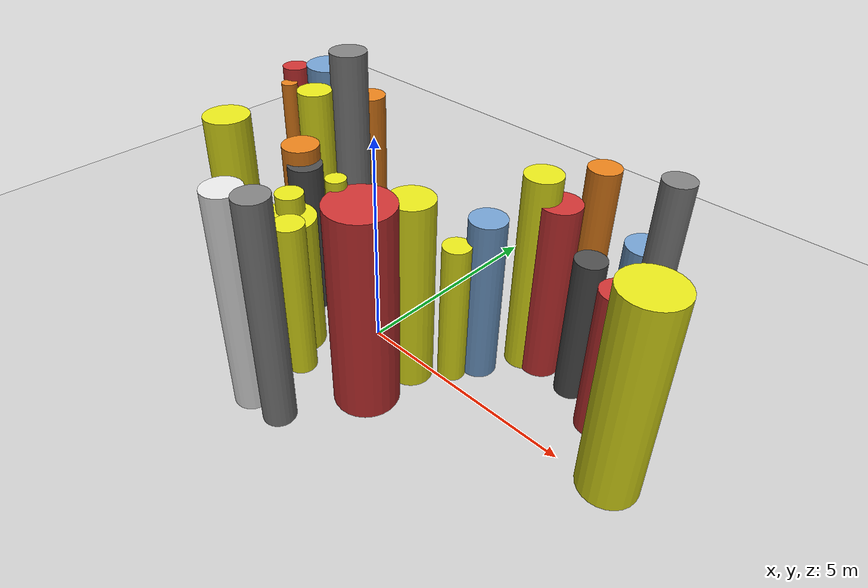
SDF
<?xml version='1.0'?>
<sdf version='1.6'>
  <world name='routeA_rl_v1__dense_recovery__rl_train__s_turn_multi_obstacle__000088'>
    <!-- Sun light -->
    <light name='sun' type='directional'>
      <cast_shadows>1</cast_shadows>
      <pose>0 0 10 0 0 0</pose>
      <diffuse>0.8 0.8 0.8 1</diffuse>
      <specular>0.2 0.2 0.2 1</specular>
      <attenuation>
        <range>1000</range>
        <constant>0.9</constant>
        <linear>0.01</linear>
        <quadratic>0.001</quadratic>
      </attenuation>
      <direction>-0.5 0.1 -0.9</direction>
    </light>

    <!-- Ground plane -->
    <model name='ground_plane'>
      <static>1</static>
      <link name='link'>
        <collision name='collision'>
          <geometry>
            <plane>
              <normal>0 0 1</normal>
              <size>100 100</size>
            </plane>
          </geometry>
          <surface>
            <contact>
              <collide_bitmask>65535</collide_bitmask>
              <ode/>
            </contact>
            <friction>
              <ode>
                <mu>100</mu>
                <mu2>50</mu2>
              </ode>
              <torsional><ode/></torsional>
            </friction>
            <bounce/>
          </surface>
          <max_contacts>10</max_contacts>
        </collision>
        <visual name='visual'>
          <cast_shadows>0</cast_shadows>
          <geometry>
            <plane>
              <normal>0 0 1</normal>
              <size>100 100</size>
            </plane>
          </geometry>
          <material>
            <script>
              <uri>file://media/materials/scripts/gazebo.material</uri>
              <n>Gazebo/Grey</n>
            </script>
          </material>
        </visual>
      </link>
    </model>

    <!-- Environment -->
    <magnetic_field>6e-06 2.3e-05 -4.2e-05</magnetic_field>
    <atmosphere type='adiabatic'/>
    <physics name='default_physics' default='0' type='ode'>
      <gravity>0 0 -9.8</gravity>
      <max_step_size>0.004</max_step_size>
      <real_time_factor>1</real_time_factor>
      <real_time_update_rate>250</real_time_update_rate>
    </physics>
    <scene>
      <ambient>0.4 0.4 0.4 1</ambient>
      <background>0.7 0.7 0.7 1</background>
      <shadows>1</shadows>
    </scene>
    <wind/>
    <spherical_coordinates>
      <surface_model>EARTH_WGS84</surface_model>
      <latitude_deg>0</latitude_deg>
      <longitude_deg>0</longitude_deg>
      <elevation>0</elevation>
      <heading_deg>0</heading_deg>
    </spherical_coordinates>

    <!-- ============ OBSTACLES (28) ============ -->
    <model name='s_turn_obs_0'>
      <static>1</static>
      <link name='link'>
        <visual name='visual'>
          <geometry>
            <cylinder>
              <radius>0.6164</radius>
              <length>3.4247</length>
            </cylinder>
          </geometry>
          <material>
            <script>
              <n>Gazebo/Yellow</n>
              <uri>file://media/materials/scripts/gazebo.material</uri>
            </script>
            <ambient>0.9 0.9 0.1 1</ambient>
          </material>
        </visual>
        <collision name='collision'>
          <geometry>
            <cylinder>
              <radius>0.6164</radius>
              <length>3.4247</length>
            </cylinder>
          </geometry>
          <max_contacts>10</max_contacts>
          <surface>
            <contact><ode/></contact>
            <bounce/>
            <friction>
              <ode><mu>1</mu><mu2>1</mu2></ode>
              <torsional><ode/></torsional>
            </friction>
          </surface>
        </collision>
      </link>
      <pose>-6.0000 0.3100 1.7124 0 0 0.0000</pose>
    </model>

    <model name='s_turn_obs_1'>
      <static>1</static>
      <link name='link'>
        <visual name='visual'>
          <geometry>
            <cylinder>
              <radius>0.3288</radius>
              <length>4.4928</length>
            </cylinder>
          </geometry>
          <material>
            <script>
              <n>Gazebo/Red</n>
              <uri>file://media/materials/scripts/gazebo.material</uri>
            </script>
            <ambient>0.8 0.2 0.2 1</ambient>
          </material>
        </visual>
        <collision name='collision'>
          <geometry>
            <cylinder>
              <radius>0.3288</radius>
              <length>4.4928</length>
            </cylinder>
          </geometry>
          <max_contacts>10</max_contacts>
          <surface>
            <contact><ode/></contact>
            <bounce/>
            <friction>
              <ode><mu>1</mu><mu2>1</mu2></ode>
              <torsional><ode/></torsional>
            </friction>
          </surface>
        </collision>
      </link>
      <pose>-5.2000 2.0354 2.2464 0 0 0.0000</pose>
    </model>

    <model name='s_turn_obs_2'>
      <static>1</static>
      <link name='link'>
        <visual name='visual'>
          <geometry>
            <cylinder>
              <radius>0.5951</radius>
              <length>4.6259</length>
            </cylinder>
          </geometry>
          <material>
            <script>
              <n>Gazebo/Blue</n>
              <uri>file://media/materials/scripts/gazebo.material</uri>
            </script>
            <ambient>0.447 0.624 0.812 1</ambient>
          </material>
        </visual>
        <collision name='collision'>
          <geometry>
            <cylinder>
              <radius>0.5951</radius>
              <length>4.6259</length>
            </cylinder>
          </geometry>
          <max_contacts>10</max_contacts>
          <surface>
            <contact><ode/></contact>
            <bounce/>
            <friction>
              <ode><mu>1</mu><mu2>1</mu2></ode>
              <torsional><ode/></torsional>
            </friction>
          </surface>
        </collision>
      </link>
      <pose>-4.4000 2.5199 2.3130 0 0 0.0000</pose>
    </model>

    <model name='s_turn_obs_3'>
      <static>1</static>
      <link name='link'>
        <visual name='visual'>
          <geometry>
            <cylinder>
              <radius>0.4131</radius>
              <length>3.8688</length>
            </cylinder>
          </geometry>
          <material>
            <script>
              <n>Gazebo/Orange</n>
              <uri>file://media/materials/scripts/gazebo.material</uri>
            </script>
            <ambient>0.9 0.5 0.1 1</ambient>
          </material>
        </visual>
        <collision name='collision'>
          <geometry>
            <cylinder>
              <radius>0.4131</radius>
              <length>3.8688</length>
            </cylinder>
          </geometry>
          <max_contacts>10</max_contacts>
          <surface>
            <contact><ode/></contact>
            <bounce/>
            <friction>
              <ode><mu>1</mu><mu2>1</mu2></ode>
              <torsional><ode/></torsional>
            </friction>
          </surface>
        </collision>
      </link>
      <pose>-3.6000 3.1013 1.9344 0 0 0.0000</pose>
    </model>

    <model name='s_turn_obs_4'>
      <static>1</static>
      <link name='link'>
        <visual name='visual'>
          <geometry>
            <cylinder>
              <radius>0.4392</radius>
              <length>5.5619</length>
            </cylinder>
          </geometry>
          <material>
            <script>
              <n>Gazebo/Grey</n>
              <uri>file://media/materials/scripts/gazebo.material</uri>
            </script>
            <ambient>0.5 0.5 0.5 1</ambient>
          </material>
        </visual>
        <collision name='collision'>
          <geometry>
            <cylinder>
              <radius>0.4392</radius>
              <length>5.5619</length>
            </cylinder>
          </geometry>
          <max_contacts>10</max_contacts>
          <surface>
            <contact><ode/></contact>
            <bounce/>
            <friction>
              <ode><mu>1</mu><mu2>1</mu2></ode>
              <torsional><ode/></torsional>
            </friction>
          </surface>
        </collision>
      </link>
      <pose>-2.8000 1.7825 2.7810 0 0 0.0000</pose>
    </model>

    <model name='s_turn_obs_5'>
      <static>1</static>
      <link name='link'>
        <visual name='visual'>
          <geometry>
            <cylinder>
              <radius>0.3938</radius>
              <length>3.7597</length>
            </cylinder>
          </geometry>
          <material>
            <script>
              <n>Gazebo/DarkGrey</n>
              <uri>file://media/materials/scripts/gazebo.material</uri>
            </script>
            <ambient>0.3 0.3 0.3 1</ambient>
          </material>
        </visual>
        <collision name='collision'>
          <geometry>
            <cylinder>
              <radius>0.3938</radius>
              <length>3.7597</length>
            </cylinder>
          </geometry>
          <max_contacts>10</max_contacts>
          <surface>
            <contact><ode/></contact>
            <bounce/>
            <friction>
              <ode><mu>1</mu><mu2>1</mu2></ode>
              <torsional><ode/></torsional>
            </friction>
          </surface>
        </collision>
      </link>
      <pose>-2.0000 -0.2478 1.8799 0 0 0.0000</pose>
    </model>

    <model name='s_turn_obs_6'>
      <static>1</static>
      <link name='link'>
        <visual name='visual'>
          <geometry>
            <cylinder>
              <radius>0.6126</radius>
              <length>3.2603</length>
            </cylinder>
          </geometry>
          <material>
            <script>
              <n>Gazebo/Yellow</n>
              <uri>file://media/materials/scripts/gazebo.material</uri>
            </script>
            <ambient>0.9 0.9 0.1 1</ambient>
          </material>
        </visual>
        <collision name='collision'>
          <geometry>
            <cylinder>
              <radius>0.6126</radius>
              <length>3.2603</length>
            </cylinder>
          </geometry>
          <max_contacts>10</max_contacts>
          <surface>
            <contact><ode/></contact>
            <bounce/>
            <friction>
              <ode><mu>1</mu><mu2>1</mu2></ode>
              <torsional><ode/></torsional>
            </friction>
          </surface>
        </collision>
      </link>
      <pose>-1.2000 -1.3668 1.6301 0 0 0.0000</pose>
    </model>

    <model name='s_turn_obs_7'>
      <static>1</static>
      <link name='link'>
        <visual name='visual'>
          <geometry>
            <cylinder>
              <radius>0.3978</radius>
              <length>5.0302</length>
            </cylinder>
          </geometry>
          <material>
            <script>
              <n>Gazebo/White</n>
              <uri>file://media/materials/scripts/gazebo.material</uri>
            </script>
            <ambient>0.9 0.9 0.9 1</ambient>
          </material>
        </visual>
        <collision name='collision'>
          <geometry>
            <cylinder>
              <radius>0.3978</radius>
              <length>5.0302</length>
            </cylinder>
          </geometry>
          <max_contacts>10</max_contacts>
          <surface>
            <contact><ode/></contact>
            <bounce/>
            <friction>
              <ode><mu>1</mu><mu2>1</mu2></ode>
              <torsional><ode/></torsional>
            </friction>
          </surface>
        </collision>
      </link>
      <pose>-0.4000 -3.1900 2.5151 0 0 0.0000</pose>
    </model>

    <model name='s_turn_obs_8'>
      <static>1</static>
      <link name='link'>
        <visual name='visual'>
          <geometry>
            <cylinder>
              <radius>0.3493</radius>
              <length>5.1892</length>
            </cylinder>
          </geometry>
          <material>
            <script>
              <n>Gazebo/Grey</n>
              <uri>file://media/materials/scripts/gazebo.material</uri>
            </script>
            <ambient>0.5 0.5 0.5 1</ambient>
          </material>
        </visual>
        <collision name='collision'>
          <geometry>
            <cylinder>
              <radius>0.3493</radius>
              <length>5.1892</length>
            </cylinder>
          </geometry>
          <max_contacts>10</max_contacts>
          <surface>
            <contact><ode/></contact>
            <bounce/>
            <friction>
              <ode><mu>1</mu><mu2>1</mu2></ode>
              <torsional><ode/></torsional>
            </friction>
          </surface>
        </collision>
      </link>
      <pose>0.4000 -3.1139 2.5946 0 0 0.0000</pose>
    </model>

    <model name='s_turn_obs_9'>
      <static>1</static>
      <link name='link'>
        <visual name='visual'>
          <geometry>
            <cylinder>
              <radius>0.6983</radius>
              <length>4.6590</length>
            </cylinder>
          </geometry>
          <material>
            <script>
              <n>Gazebo/Red</n>
              <uri>file://media/materials/scripts/gazebo.material</uri>
            </script>
            <ambient>0.8 0.2 0.2 1</ambient>
          </material>
        </visual>
        <collision name='collision'>
          <geometry>
            <cylinder>
              <radius>0.6983</radius>
              <length>4.6590</length>
            </cylinder>
          </geometry>
          <max_contacts>10</max_contacts>
          <surface>
            <contact><ode/></contact>
            <bounce/>
            <friction>
              <ode><mu>1</mu><mu2>1</mu2></ode>
              <torsional><ode/></torsional>
            </friction>
          </surface>
        </collision>
      </link>
      <pose>1.2000 -1.4524 2.3295 0 0 0.0000</pose>
    </model>

    <model name='s_turn_obs_10'>
      <static>1</static>
      <link name='link'>
        <visual name='visual'>
          <geometry>
            <cylinder>
              <radius>0.3016</radius>
              <length>3.3149</length>
            </cylinder>
          </geometry>
          <material>
            <script>
              <n>Gazebo/Yellow</n>
              <uri>file://media/materials/scripts/gazebo.material</uri>
            </script>
            <ambient>0.9 0.9 0.1 1</ambient>
          </material>
        </visual>
        <collision name='collision'>
          <geometry>
            <cylinder>
              <radius>0.3016</radius>
              <length>3.3149</length>
            </cylinder>
          </geometry>
          <max_contacts>10</max_contacts>
          <surface>
            <contact><ode/></contact>
            <bounce/>
            <friction>
              <ode><mu>1</mu><mu2>1</mu2></ode>
              <torsional><ode/></torsional>
            </friction>
          </surface>
        </collision>
      </link>
      <pose>2.0000 0.2905 1.6574 0 0 0.0000</pose>
    </model>

    <model name='s_turn_obs_11'>
      <static>1</static>
      <link name='link'>
        <visual name='visual'>
          <geometry>
            <cylinder>
              <radius>0.3951</radius>
              <length>4.6357</length>
            </cylinder>
          </geometry>
          <material>
            <script>
              <n>Gazebo/Yellow</n>
              <uri>file://media/materials/scripts/gazebo.material</uri>
            </script>
            <ambient>0.9 0.9 0.1 1</ambient>
          </material>
        </visual>
        <collision name='collision'>
          <geometry>
            <cylinder>
              <radius>0.3951</radius>
              <length>4.6357</length>
            </cylinder>
          </geometry>
          <max_contacts>10</max_contacts>
          <surface>
            <contact><ode/></contact>
            <bounce/>
            <friction>
              <ode><mu>1</mu><mu2>1</mu2></ode>
              <torsional><ode/></torsional>
            </friction>
          </surface>
        </collision>
      </link>
      <pose>2.8000 1.7588 2.3179 0 0 0.0000</pose>
    </model>

    <model name='s_turn_obs_12'>
      <static>1</static>
      <link name='link'>
        <visual name='visual'>
          <geometry>
            <cylinder>
              <radius>0.3318</radius>
              <length>4.7910</length>
            </cylinder>
          </geometry>
          <material>
            <script>
              <n>Gazebo/Orange</n>
              <uri>file://media/materials/scripts/gazebo.material</uri>
            </script>
            <ambient>0.9 0.5 0.1 1</ambient>
          </material>
        </visual>
        <collision name='collision'>
          <geometry>
            <cylinder>
              <radius>0.3318</radius>
              <length>4.7910</length>
            </cylinder>
          </geometry>
          <max_contacts>10</max_contacts>
          <surface>
            <contact><ode/></contact>
            <bounce/>
            <friction>
              <ode><mu>1</mu><mu2>1</mu2></ode>
              <torsional><ode/></torsional>
            </friction>
          </surface>
        </collision>
      </link>
      <pose>3.6000 2.5374 2.3955 0 0 0.0000</pose>
    </model>

    <model name='s_turn_obs_13'>
      <static>1</static>
      <link name='link'>
        <visual name='visual'>
          <geometry>
            <cylinder>
              <radius>0.4346</radius>
              <length>3.0837</length>
            </cylinder>
          </geometry>
          <material>
            <script>
              <n>Gazebo/Blue</n>
              <uri>file://media/materials/scripts/gazebo.material</uri>
            </script>
            <ambient>0.447 0.624 0.812 1</ambient>
          </material>
        </visual>
        <collision name='collision'>
          <geometry>
            <cylinder>
              <radius>0.4346</radius>
              <length>3.0837</length>
            </cylinder>
          </geometry>
          <max_contacts>10</max_contacts>
          <surface>
            <contact><ode/></contact>
            <bounce/>
            <friction>
              <ode><mu>1</mu><mu2>1</mu2></ode>
              <torsional><ode/></torsional>
            </friction>
          </surface>
        </collision>
      </link>
      <pose>4.4000 3.2410 1.5418 0 0 0.0000</pose>
    </model>

    <model name='s_turn_obs_14'>
      <static>1</static>
      <link name='link'>
        <visual name='visual'>
          <geometry>
            <cylinder>
              <radius>0.3061</radius>
              <length>5.3277</length>
            </cylinder>
          </geometry>
          <material>
            <script>
              <n>Gazebo/Grey</n>
              <uri>file://media/materials/scripts/gazebo.material</uri>
            </script>
            <ambient>0.5 0.5 0.5 1</ambient>
          </material>
        </visual>
        <collision name='collision'>
          <geometry>
            <cylinder>
              <radius>0.3061</radius>
              <length>5.3277</length>
            </cylinder>
          </geometry>
          <max_contacts>10</max_contacts>
          <surface>
            <contact><ode/></contact>
            <bounce/>
            <friction>
              <ode><mu>1</mu><mu2>1</mu2></ode>
              <torsional><ode/></torsional>
            </friction>
          </surface>
        </collision>
      </link>
      <pose>5.2000 2.1436 2.6639 0 0 0.0000</pose>
    </model>

    <model name='s_turn_obs_15'>
      <static>1</static>
      <link name='link'>
        <visual name='visual'>
          <geometry>
            <cylinder>
              <radius>0.6048</radius>
              <length>4.5943</length>
            </cylinder>
          </geometry>
          <material>
            <script>
              <n>Gazebo/Yellow</n>
              <uri>file://media/materials/scripts/gazebo.material</uri>
            </script>
            <ambient>0.9 0.9 0.1 1</ambient>
          </material>
        </visual>
        <collision name='collision'>
          <geometry>
            <cylinder>
              <radius>0.6048</radius>
              <length>4.5943</length>
            </cylinder>
          </geometry>
          <max_contacts>10</max_contacts>
          <surface>
            <contact><ode/></contact>
            <bounce/>
            <friction>
              <ode><mu>1</mu><mu2>1</mu2></ode>
              <torsional><ode/></torsional>
            </friction>
          </surface>
        </collision>
      </link>
      <pose>6.0000 0.1955 2.2971 0 0 0.0000</pose>
    </model>

    <model name='s_turn_obs2_0'>
      <static>1</static>
      <link name='link'>
        <visual name='visual'>
          <geometry>
            <cylinder>
              <radius>0.2030</radius>
              <length>4.2016</length>
            </cylinder>
          </geometry>
          <material>
            <script>
              <n>Gazebo/Orange</n>
              <uri>file://media/materials/scripts/gazebo.material</uri>
            </script>
            <ambient>0.9 0.5 0.1 1</ambient>
          </material>
        </visual>
        <collision name='collision'>
          <geometry>
            <cylinder>
              <radius>0.2030</radius>
              <length>4.2016</length>
            </cylinder>
          </geometry>
          <max_contacts>10</max_contacts>
          <surface>
            <contact><ode/></contact>
            <bounce/>
            <friction>
              <ode><mu>1</mu><mu2>1</mu2></ode>
              <torsional><ode/></torsional>
            </friction>
          </surface>
        </collision>
      </link>
      <pose>-5.0000 1.6531 2.1008 0 0 0.0000</pose>
    </model>

    <model name='s_turn_obs2_1'>
      <static>1</static>
      <link name='link'>
        <visual name='visual'>
          <geometry>
            <cylinder>
              <radius>0.2793</radius>
              <length>3.6263</length>
            </cylinder>
          </geometry>
          <material>
            <script>
              <n>Gazebo/White</n>
              <uri>file://media/materials/scripts/gazebo.material</uri>
            </script>
            <ambient>0.9 0.9 0.9 1</ambient>
          </material>
        </visual>
        <collision name='collision'>
          <geometry>
            <cylinder>
              <radius>0.2793</radius>
              <length>3.6263</length>
            </cylinder>
          </geometry>
          <max_contacts>10</max_contacts>
          <surface>
            <contact><ode/></contact>
            <bounce/>
            <friction>
              <ode><mu>1</mu><mu2>1</mu2></ode>
              <torsional><ode/></torsional>
            </friction>
          </surface>
        </collision>
      </link>
      <pose>-4.0909 2.1782 1.8132 0 0 0.0000</pose>
    </model>

    <model name='s_turn_obs2_2'>
      <static>1</static>
      <link name='link'>
        <visual name='visual'>
          <geometry>
            <cylinder>
              <radius>0.4094</radius>
              <length>4.7263</length>
            </cylinder>
          </geometry>
          <material>
            <script>
              <n>Gazebo/Yellow</n>
              <uri>file://media/materials/scripts/gazebo.material</uri>
            </script>
            <ambient>0.9 0.9 0.1 1</ambient>
          </material>
        </visual>
        <collision name='collision'>
          <geometry>
            <cylinder>
              <radius>0.4094</radius>
              <length>4.7263</length>
            </cylinder>
          </geometry>
          <max_contacts>10</max_contacts>
          <surface>
            <contact><ode/></contact>
            <bounce/>
            <friction>
              <ode><mu>1</mu><mu2>1</mu2></ode>
              <torsional><ode/></torsional>
            </friction>
          </surface>
        </collision>
      </link>
      <pose>-3.1818 1.0520 2.3632 0 0 0.0000</pose>
    </model>

    <model name='s_turn_obs2_3'>
      <static>1</static>
      <link name='link'>
        <visual name='visual'>
          <geometry>
            <cylinder>
              <radius>0.4235</radius>
              <length>4.0880</length>
            </cylinder>
          </geometry>
          <material>
            <script>
              <n>Gazebo/Orange</n>
              <uri>file://media/materials/scripts/gazebo.material</uri>
            </script>
            <ambient>0.9 0.5 0.1 1</ambient>
          </material>
        </visual>
        <collision name='collision'>
          <geometry>
            <cylinder>
              <radius>0.4235</radius>
              <length>4.0880</length>
            </cylinder>
          </geometry>
          <max_contacts>10</max_contacts>
          <surface>
            <contact><ode/></contact>
            <bounce/>
            <friction>
              <ode><mu>1</mu><mu2>1</mu2></ode>
              <torsional><ode/></torsional>
            </friction>
          </surface>
        </collision>
      </link>
      <pose>-2.2727 -0.1225 2.0440 0 0 0.0000</pose>
    </model>

    <model name='s_turn_obs2_4'>
      <static>1</static>
      <link name='link'>
        <visual name='visual'>
          <geometry>
            <cylinder>
              <radius>0.3093</radius>
              <length>3.6731</length>
            </cylinder>
          </geometry>
          <material>
            <script>
              <n>Gazebo/Yellow</n>
              <uri>file://media/materials/scripts/gazebo.material</uri>
            </script>
            <ambient>0.9 0.9 0.1 1</ambient>
          </material>
        </visual>
        <collision name='collision'>
          <geometry>
            <cylinder>
              <radius>0.3093</radius>
              <length>3.6731</length>
            </cylinder>
          </geometry>
          <max_contacts>10</max_contacts>
          <surface>
            <contact><ode/></contact>
            <bounce/>
            <friction>
              <ode><mu>1</mu><mu2>1</mu2></ode>
              <torsional><ode/></torsional>
            </friction>
          </surface>
        </collision>
      </link>
      <pose>-1.3636 -1.1599 1.8366 0 0 0.0000</pose>
    </model>

    <model name='s_turn_obs2_5'>
      <static>1</static>
      <link name='link'>
        <visual name='visual'>
          <geometry>
            <cylinder>
              <radius>0.3299</radius>
              <length>3.6733</length>
            </cylinder>
          </geometry>
          <material>
            <script>
              <n>Gazebo/Yellow</n>
              <uri>file://media/materials/scripts/gazebo.material</uri>
            </script>
            <ambient>0.9 0.9 0.1 1</ambient>
          </material>
        </visual>
        <collision name='collision'>
          <geometry>
            <cylinder>
              <radius>0.3299</radius>
              <length>3.6733</length>
            </cylinder>
          </geometry>
          <max_contacts>10</max_contacts>
          <surface>
            <contact><ode/></contact>
            <bounce/>
            <friction>
              <ode><mu>1</mu><mu2>1</mu2></ode>
              <torsional><ode/></torsional>
            </friction>
          </surface>
        </collision>
      </link>
      <pose>-0.4545 -1.8684 1.8367 0 0 0.0000</pose>
    </model>

    <model name='s_turn_obs2_6'>
      <static>1</static>
      <link name='link'>
        <visual name='visual'>
          <geometry>
            <cylinder>
              <radius>0.2038</radius>
              <length>4.8306</length>
            </cylinder>
          </geometry>
          <material>
            <script>
              <n>Gazebo/Yellow</n>
              <uri>file://media/materials/scripts/gazebo.material</uri>
            </script>
            <ambient>0.9 0.9 0.1 1</ambient>
          </material>
        </visual>
        <collision name='collision'>
          <geometry>
            <cylinder>
              <radius>0.2038</radius>
              <length>4.8306</length>
            </cylinder>
          </geometry>
          <max_contacts>10</max_contacts>
          <surface>
            <contact><ode/></contact>
            <bounce/>
            <friction>
              <ode><mu>1</mu><mu2>1</mu2></ode>
              <torsional><ode/></torsional>
            </friction>
          </surface>
        </collision>
      </link>
      <pose>0.4545 -1.3561 2.4153 0 0 0.0000</pose>
    </model>

    <model name='s_turn_obs2_7'>
      <static>1</static>
      <link name='link'>
        <visual name='visual'>
          <geometry>
            <cylinder>
              <radius>0.4784</radius>
              <length>4.3687</length>
            </cylinder>
          </geometry>
          <material>
            <script>
              <n>Gazebo/Yellow</n>
              <uri>file://media/materials/scripts/gazebo.material</uri>
            </script>
            <ambient>0.9 0.9 0.1 1</ambient>
          </material>
        </visual>
        <collision name='collision'>
          <geometry>
            <cylinder>
              <radius>0.4784</radius>
              <length>4.3687</length>
            </cylinder>
          </geometry>
          <max_contacts>10</max_contacts>
          <surface>
            <contact><ode/></contact>
            <bounce/>
            <friction>
              <ode><mu>1</mu><mu2>1</mu2></ode>
              <torsional><ode/></torsional>
            </friction>
          </surface>
        </collision>
      </link>
      <pose>1.3636 -0.3190 2.1844 0 0 0.0000</pose>
    </model>

    <model name='s_turn_obs2_8'>
      <static>1</static>
      <link name='link'>
        <visual name='visual'>
          <geometry>
            <cylinder>
              <radius>0.3948</radius>
              <length>3.8100</length>
            </cylinder>
          </geometry>
          <material>
            <script>
              <n>Gazebo/Blue</n>
              <uri>file://media/materials/scripts/gazebo.material</uri>
            </script>
            <ambient>0.447 0.624 0.812 1</ambient>
          </material>
        </visual>
        <collision name='collision'>
          <geometry>
            <cylinder>
              <radius>0.3948</radius>
              <length>3.8100</length>
            </cylinder>
          </geometry>
          <max_contacts>10</max_contacts>
          <surface>
            <contact><ode/></contact>
            <bounce/>
            <friction>
              <ode><mu>1</mu><mu2>1</mu2></ode>
              <torsional><ode/></torsional>
            </friction>
          </surface>
        </collision>
      </link>
      <pose>2.2727 0.8539 1.9050 0 0 0.0000</pose>
    </model>

    <model name='s_turn_obs2_9'>
      <static>1</static>
      <link name='link'>
        <visual name='visual'>
          <geometry>
            <cylinder>
              <radius>0.4390</radius>
              <length>4.1247</length>
            </cylinder>
          </geometry>
          <material>
            <script>
              <n>Gazebo/Red</n>
              <uri>file://media/materials/scripts/gazebo.material</uri>
            </script>
            <ambient>0.8 0.2 0.2 1</ambient>
          </material>
        </visual>
        <collision name='collision'>
          <geometry>
            <cylinder>
              <radius>0.4390</radius>
              <length>4.1247</length>
            </cylinder>
          </geometry>
          <max_contacts>10</max_contacts>
          <surface>
            <contact><ode/></contact>
            <bounce/>
            <friction>
              <ode><mu>1</mu><mu2>1</mu2></ode>
              <torsional><ode/></torsional>
            </friction>
          </surface>
        </collision>
      </link>
      <pose>3.1818 1.8604 2.0624 0 0 0.0000</pose>
    </model>

    <model name='s_turn_obs2_10'>
      <static>1</static>
      <link name='link'>
        <visual name='visual'>
          <geometry>
            <cylinder>
              <radius>0.3254</radius>
              <length>3.3440</length>
            </cylinder>
          </geometry>
          <material>
            <script>
              <n>Gazebo/DarkGrey</n>
              <uri>file://media/materials/scripts/gazebo.material</uri>
            </script>
            <ambient>0.3 0.3 0.3 1</ambient>
          </material>
        </visual>
        <collision name='collision'>
          <geometry>
            <cylinder>
              <radius>0.3254</radius>
              <length>3.3440</length>
            </cylinder>
          </geometry>
          <max_contacts>10</max_contacts>
          <surface>
            <contact><ode/></contact>
            <bounce/>
            <friction>
              <ode><mu>1</mu><mu2>1</mu2></ode>
              <torsional><ode/></torsional>
            </friction>
          </surface>
        </collision>
      </link>
      <pose>4.0909 1.7069 1.6720 0 0 0.0000</pose>
    </model>

    <model name='s_turn_obs2_11'>
      <static>1</static>
      <link name='link'>
        <visual name='visual'>
          <geometry>
            <cylinder>
              <radius>0.3792</radius>
              <length>3.3848</length>
            </cylinder>
          </geometry>
          <material>
            <script>
              <n>Gazebo/Red</n>
              <uri>file://media/materials/scripts/gazebo.material</uri>
            </script>
            <ambient>0.8 0.2 0.2 1</ambient>
          </material>
        </visual>
        <collision name='collision'>
          <geometry>
            <cylinder>
              <radius>0.3792</radius>
              <length>3.3848</length>
            </cylinder>
          </geometry>
          <max_contacts>10</max_contacts>
          <surface>
            <contact><ode/></contact>
            <bounce/>
            <friction>
              <ode><mu>1</mu><mu2>1</mu2></ode>
              <torsional><ode/></torsional>
            </friction>
          </surface>
        </collision>
      </link>
      <pose>5.0000 1.2207 1.6924 0 0 0.0000</pose>
    </model>

    <!-- GUI camera -->
    <gui fullscreen='0'>
      <camera name='user_camera'>
        <pose>-15 0 18 0 0.85 0.15</pose>
        <view_controller>orbit</view_controller>
        <projection_type>perspective</projection_type>
      </camera>
    </gui>
  </world>
</sdf>
